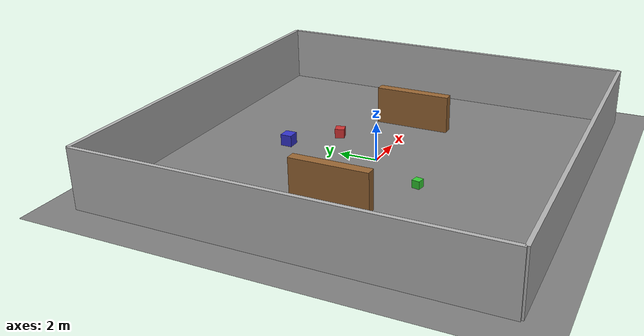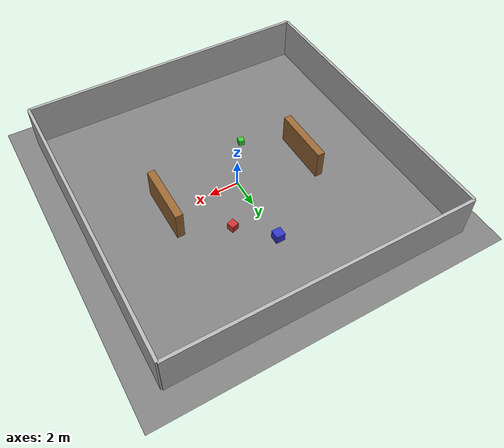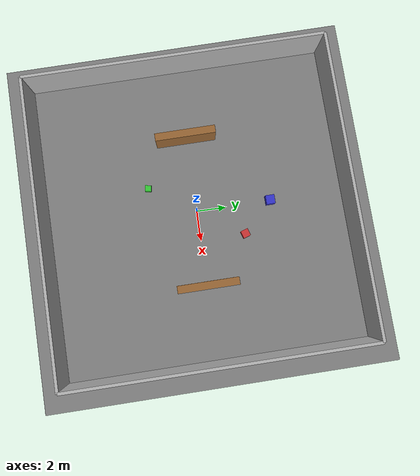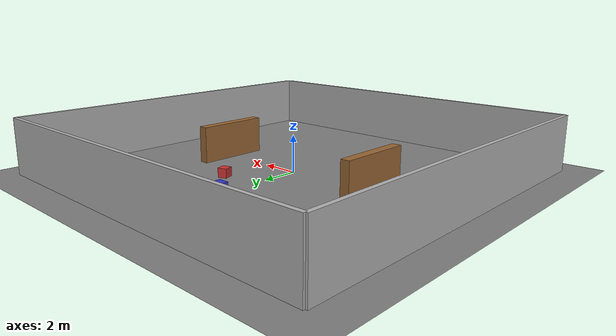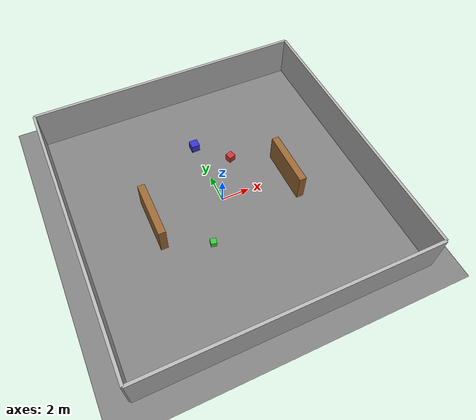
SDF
<?xml version="1.0" ?>
<sdf version="1.8">
  <world name="warehouse_world">

    <!-- Physics settings -->
    <physics name="1ms" type="ode">
      <max_step_size>0.001</max_step_size>
      <real_time_factor>1.0</real_time_factor>
    </physics>

    <!-- Plugins -->
    <plugin filename="gz-sim-physics-system" name="gz::sim::systems::Physics"/>
    <plugin filename="gz-sim-user-commands-system" name="gz::sim::systems::UserCommands"/>
    <plugin filename="gz-sim-scene-broadcaster-system" name="gz::sim::systems::SceneBroadcaster"/>
    <plugin filename="gz-sim-sensors-system" name="gz::sim::systems::Sensors">
      <render_engine>ogre2</render_engine>
    </plugin>

    <!-- Ambient lighting -->
    <light type="directional" name="sun">
      <cast_shadows>true</cast_shadows>
      <pose>0 0 10 0 0 0</pose>
      <diffuse>0.8 0.8 0.8 1</diffuse>
      <specular>0.2 0.2 0.2 1</specular>
      <direction>-0.5 0.1 -0.9</direction>
    </light>

    <!-- Ground plane -->
    <model name="ground_plane">
      <static>true</static>
      <link name="link">
        <collision name="collision">
          <geometry>
            <plane>
              <normal>0 0 1</normal>
              <size>50 50</size>
            </plane>
          </geometry>
        </collision>
        <visual name="visual">
          <geometry>
            <plane>
              <normal>0 0 1</normal>
              <size>50 50</size>
            </plane>
          </geometry>
          <material>
            <ambient>0.5 0.5 0.5 1</ambient>
            <diffuse>0.5 0.5 0.5 1</diffuse>
          </material>
        </visual>
      </link>
    </model>

    <!-- Warehouse walls -->
    <model name="wall_north">
      <static>true</static>
      <pose>0 10 1.5 0 0 0</pose>
      <link name="link">
        <collision name="collision">
          <geometry>
            <box><size>20 0.2 3</size></box>
          </geometry>
        </collision>
        <visual name="visual">
          <geometry>
            <box><size>20 0.2 3</size></box>
          </geometry>
          <material>
            <ambient>0.7 0.7 0.7 1</ambient>
            <diffuse>0.7 0.7 0.7 1</diffuse>
          </material>
        </visual>
      </link>
    </model>

    <model name="wall_south">
      <static>true</static>
      <pose>0 -10 1.5 0 0 0</pose>
      <link name="link">
        <collision name="collision">
          <geometry>
            <box><size>20 0.2 3</size></box>
          </geometry>
        </collision>
        <visual name="visual">
          <geometry>
            <box><size>20 0.2 3</size></box>
          </geometry>
          <material>
            <ambient>0.7 0.7 0.7 1</ambient>
            <diffuse>0.7 0.7 0.7 1</diffuse>
          </material>
        </visual>
      </link>
    </model>

    <model name="wall_east">
      <static>true</static>
      <pose>10 0 1.5 0 0 1.5708</pose>
      <link name="link">
        <collision name="collision">
          <geometry>
            <box><size>20 0.2 3</size></box>
          </geometry>
        </collision>
        <visual name="visual">
          <geometry>
            <box><size>20 0.2 3</size></box>
          </geometry>
          <material>
            <ambient>0.7 0.7 0.7 1</ambient>
            <diffuse>0.7 0.7 0.7 1</diffuse>
          </material>
        </visual>
      </link>
    </model>

    <model name="wall_west">
      <static>true</static>
      <pose>-10 0 1.5 0 0 1.5708</pose>
      <link name="link">
        <collision name="collision">
          <geometry>
            <box><size>20 0.2 3</size></box>
          </geometry>
        </collision>
        <visual name="visual">
          <geometry>
            <box><size>20 0.2 3</size></box>
          </geometry>
          <material>
            <ambient>0.7 0.7 0.7 1</ambient>
            <diffuse>0.7 0.7 0.7 1</diffuse>
          </material>
        </visual>
      </link>
    </model>

    <!-- Shelving unit 1 -->
    <model name="shelf_1">
      <static>true</static>
      <pose>-5 0 1 0 0 0</pose>
      <link name="link">
        <collision name="collision">
          <geometry>
            <box><size>0.5 4 2</size></box>
          </geometry>
        </collision>
        <visual name="visual">
          <geometry>
            <box><size>0.5 4 2</size></box>
          </geometry>
          <material>
            <ambient>0.4 0.3 0.2 1</ambient>
            <diffuse>0.6 0.4 0.2 1</diffuse>
          </material>
        </visual>
      </link>
    </model>

    <!-- Shelving unit 2 -->
    <model name="shelf_2">
      <static>true</static>
      <pose>5 0 1 0 0 0</pose>
      <link name="link">
        <collision name="collision">
          <geometry>
            <box><size>0.5 4 2</size></box>
          </geometry>
        </collision>
        <visual name="visual">
          <geometry>
            <box><size>0.5 4 2</size></box>
          </geometry>
          <material>
            <ambient>0.4 0.3 0.2 1</ambient>
            <diffuse>0.6 0.4 0.2 1</diffuse>
          </material>
        </visual>
      </link>
    </model>

    <!-- Obstacle boxes -->
    <model name="box_1">
      <pose>2 3 0.25 0 0 0.3</pose>
      <link name="link">
        <inertial>
          <mass>5.0</mass>
          <inertia>
            <ixx>0.083</ixx><iyy>0.083</iyy><izz>0.083</izz>
          </inertia>
        </inertial>
        <collision name="collision">
          <geometry>
            <box><size>0.5 0.5 0.5</size></box>
          </geometry>
        </collision>
        <visual name="visual">
          <geometry>
            <box><size>0.5 0.5 0.5</size></box>
          </geometry>
          <material>
            <ambient>0.8 0.2 0.2 1</ambient>
            <diffuse>0.8 0.2 0.2 1</diffuse>
          </material>
        </visual>
      </link>
    </model>

    <model name="box_2">
      <pose>-2 -3 0.25 0 0 -0.2</pose>
      <link name="link">
        <inertial>
          <mass>3.0</mass>
          <inertia>
            <ixx>0.05</ixx><iyy>0.05</iyy><izz>0.05</izz>
          </inertia>
        </inertial>
        <collision name="collision">
          <geometry>
            <box><size>0.4 0.4 0.4</size></box>
          </geometry>
        </collision>
        <visual name="visual">
          <geometry>
            <box><size>0.4 0.4 0.4</size></box>
          </geometry>
          <material>
            <ambient>0.2 0.6 0.2 1</ambient>
            <diffuse>0.2 0.8 0.2 1</diffuse>
          </material>
        </visual>
      </link>
    </model>

    <model name="box_3">
      <pose>0 5 0.3 0 0 0</pose>
      <link name="link">
        <inertial>
          <mass>8.0</mass>
          <inertia>
            <ixx>0.12</ixx><iyy>0.12</iyy><izz>0.12</izz>
          </inertia>
        </inertial>
        <collision name="collision">
          <geometry>
            <box><size>0.6 0.6 0.6</size></box>
          </geometry>
        </collision>
        <visual name="visual">
          <geometry>
            <box><size>0.6 0.6 0.6</size></box>
          </geometry>
          <material>
            <ambient>0.2 0.2 0.8 1</ambient>
            <diffuse>0.2 0.2 0.8 1</diffuse>
          </material>
        </visual>
      </link>
    </model>

  </world>
</sdf>
